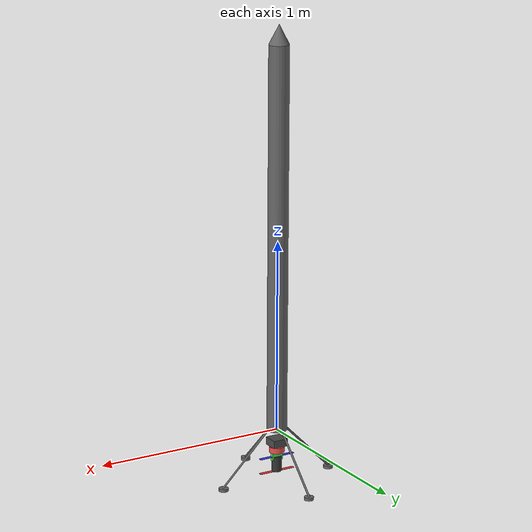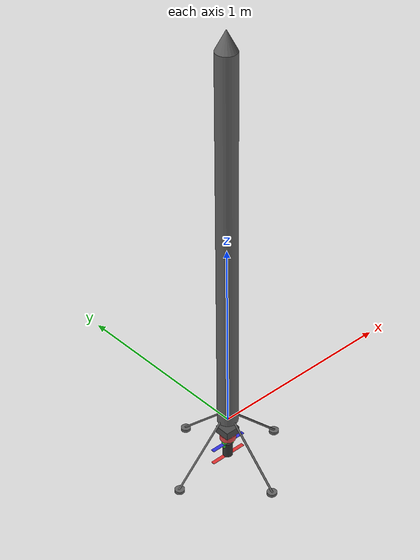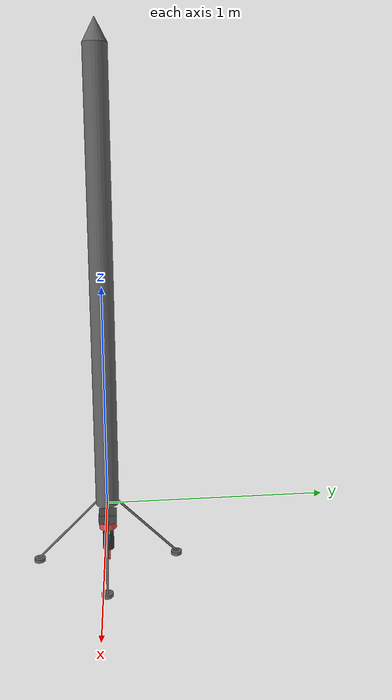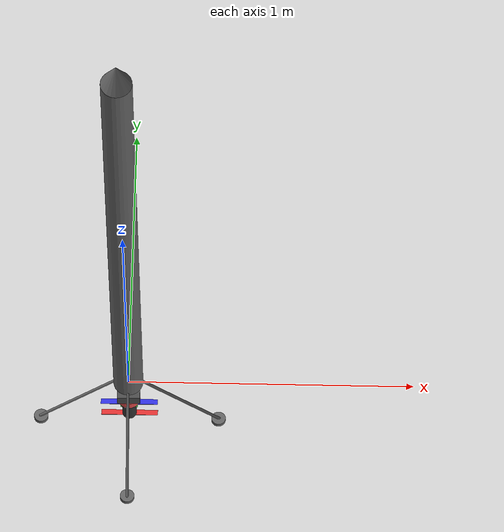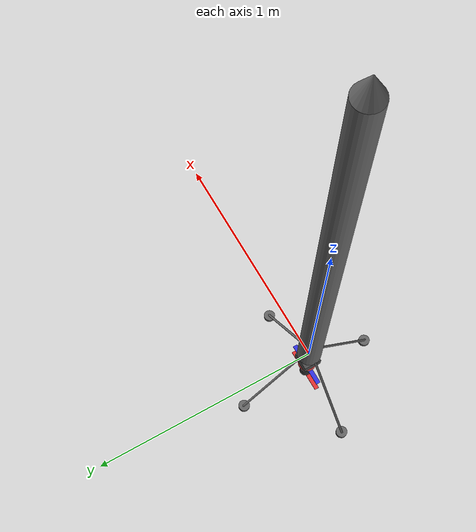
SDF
<?xml version="1.0"?>
<sdf version="1.9">
  <model name="TVC">

    <link name="base_link">
      <pose>0 0 1.0 0 0 0</pose>
      <inertial>
        <mass>0.51</mass>
        <pose>0 0 0 0 0 0</pose>
        <inertia>
          <ixx>0.042</ixx>
          <iyy>0.042</iyy>
          <izz>0.0001</izz>
          <ixy>0</ixy>
          <ixz>0</ixz>
          <iyz>0</iyz>
        </inertia>
      </inertial>

      <visual name="body_visual">
        <geometry>
          <cylinder>
            <radius>0.052</radius>
            <length>2.0</length>
          </cylinder>
        </geometry>
        <material>
          <ambient>0.2 0.2 0.2 1</ambient>
          <diffuse>0.4 0.4 0.4 1</diffuse>
          <specular>0.1 0.1 0.1 1</specular>
        </material>
      </visual>

      <collision name="body_collision">
        <geometry>
          <cylinder>
            <radius>0.052</radius>
            <length>1.0</length>
          </cylinder>
        </geometry>
      </collision>

      <sensor name="imu_sensor" type="imu">
        <always_on>1</always_on>
        <update_rate>250</update_rate>
        <pose>0 0 0.1 0 0 -1.5708</pose>
        <visualize>1</visualize>
        <imu>
          <angular_velocity>
            <x>
              <noise type="gaussian">
                <mean>0</mean>
                <stddev>0.0001</stddev>
                <dynamic_bias_stddev>1e-05</dynamic_bias_stddev>
                <dynamic_bias_correlation_time>1000</dynamic_bias_correlation_time>
              </noise>
            </x>
            <y>
              <noise type="gaussian">
                <mean>0</mean>
                <stddev>0.0001</stddev>
                <dynamic_bias_stddev>1e-05</dynamic_bias_stddev>
                <dynamic_bias_correlation_time>1000</dynamic_bias_correlation_time>
              </noise>
            </y>
            <z>
              <noise type="gaussian">
                <mean>0</mean>
                <stddev>0.00001</stddev>
                <dynamic_bias_stddev>1e-05</dynamic_bias_stddev>
                <dynamic_bias_correlation_time>1000</dynamic_bias_correlation_time>
              </noise>
            </z>
          </angular_velocity>
          <linear_acceleration>
            <x>
              <noise type="gaussian">
                <mean>0</mean>
                <stddev>0.001</stddev>
                <dynamic_bias_stddev>0.001</dynamic_bias_stddev>
                <dynamic_bias_correlation_time>300</dynamic_bias_correlation_time>
              </noise>
            </x>
            <y>
              <noise type="gaussian">
                <mean>0</mean>
                <stddev>0.001</stddev>
                <dynamic_bias_stddev>0.001</dynamic_bias_stddev>
                <dynamic_bias_correlation_time>300</dynamic_bias_correlation_time>
              </noise>
            </y>
            <z>
              <noise type="gaussian">
                <mean>0</mean>
                <stddev>0.0001</stddev>
                <dynamic_bias_stddev>0.0001</dynamic_bias_stddev>
                <dynamic_bias_correlation_time>300</dynamic_bias_correlation_time>
              </noise>
            </z>
          </linear_acceleration>
        </imu>
      </sensor>

      <sensor name="air_pressure_sensor" type="air_pressure">
        <always_on>1</always_on>
        <update_rate>50</update_rate>
        <air_pressure>
          <pressure>
            <noise type="gaussian">
              <mean>0</mean>
              <stddev>0.01</stddev>
            </noise>
          </pressure>
        </air_pressure>
      </sensor>

      <sensor name="navsat_sensor" type="navsat">
        <always_on>1</always_on>
        <update_rate>30</update_rate>
      </sensor>

    </link>

    <link name="top_cone">
      <pose>0 0 2.05 0 0 0</pose>
      <inertial>
        <mass>0.01</mass>
        <inertia>
          <ixx>1e-5</ixx>
          <iyy>1e-5</iyy>
          <izz>1e-5</izz>
          <ixy>0</ixy>
          <ixz>0</ixz>
          <iyz>0</iyz>
        </inertia>
      </inertial>

      <visual name="top_cone_visual">
        <geometry>
          <cone>
            <radius>0.052</radius>
            <length>0.1</length>
          </cone>
        </geometry>
        <material>
          <ambient>0.2 0.2 0.2 1</ambient>
          <diffuse>0.4 0.4 0.4 1</diffuse>
        </material>
      </visual>

      <collision name="top_cone_collision">
        <geometry>
          <cone>
            <radius>0.052</radius>
            <length>0.1</length>
          </cone>
        </geometry>
      </collision>
    </link>

    <link name="gimbal_mount">
      <pose>0 0 -0.065 0 0 0</pose>
      <inertial>
        <mass>0.005</mass>
        <inertia>
          <ixx>1e-5</ixx>
          <iyy>1e-5</iyy>
          <izz>1e-5</izz>
          <ixy>0</ixy>
          <ixz>0</ixz>
          <iyz>0</iyz>
        </inertia>
      </inertial>

      <visual name="gimbal_mount_visual">
        <geometry>
          <box>
            <size>0.08 0.08 0.04</size>
          </box>
        </geometry>
        <material>
          <ambient>0.1 0.1 0.1 1</ambient>
          <diffuse>0.3 0.3 0.3 1</diffuse>
        </material>
      </visual>

      <collision name="gimbal_mount_collision">
        <geometry>
          <box>
            <size>0.08 0.08 0.04</size>
          </box>
        </geometry>
      </collision>
    </link>

    <link name="servo2_yaw">
      <pose>0 0 -0.105 0 0 0</pose>
      <inertial>
        <mass>0.003</mass>
        <inertia>
          <ixx>1e-5</ixx>
          <iyy>1e-5</iyy>
          <izz>1e-5</izz>
          <ixy>0</ixy>
          <ixz>0</ixz>
          <iyz>0</iyz>
        </inertia>
      </inertial>

      <visual name="servo2_yaw_visual">
        <geometry>
          <cylinder>
            <radius>0.04</radius>
            <length>0.03</length>
          </cylinder>
        </geometry>
        <material>
          <ambient>0.8 0.2 0.2 1</ambient>
          <diffuse>0.9 0.3 0.3 1</diffuse>
        </material>
      </visual>

      <collision name="servo2_yaw_collision">
        <geometry>
          <cylinder>
            <radius>0.04</radius>
            <length>0.03</length>
          </cylinder>
        </geometry>
      </collision>
    </link>

    <link name="servo1_pitch">
      <pose>0 0 -0.135 0 0 0</pose>
      <inertial>
        <mass>0.003</mass>
        <inertia>
          <ixx>1e-5</ixx>
          <iyy>1e-5</iyy>
          <izz>1e-5</izz>
          <ixy>0</ixy>
          <ixz>0</ixz>
          <iyz>0</iyz>
        </inertia>
      </inertial>

      <visual name="servo1_pitch_visual">
        <geometry>
          <box>
            <size>0.06 0.02 0.06</size>
          </box>
        </geometry>
        <material>
          <ambient>0.2 0.8 0.2 1</ambient>
          <diffuse>0.3 0.9 0.3 1</diffuse>
        </material>
      </visual>

      <collision name="servo1_pitch_collision">
        <geometry>
          <box>
            <size>0.06 0.02 0.06</size>
          </box>
        </geometry>
      </collision>
    </link>

    <link name="motor_housing">
      <pose>0 0 -0.185 0 0 0</pose>
      <inertial>
        <mass>0.01</mass>
        <inertia>
          <ixx>1e-5</ixx>
          <iyy>1e-5</iyy>
          <izz>1e-5</izz>
          <ixy>0</ixy>
          <ixz>0</ixz>
          <iyz>0</iyz>
        </inertia>
      </inertial>

      <visual name="motor_housing_visual">
        <geometry>
          <cylinder>
            <radius>0.025</radius>
            <length>0.08</length>
          </cylinder>
        </geometry>
        <material>
          <ambient>0.1 0.1 0.1 1</ambient>
          <diffuse>0.2 0.2 0.2 1</diffuse>
        </material>
      </visual>

      <collision name="motor_housing_collision">
        <geometry>
          <cylinder>
            <radius>0.025</radius>
            <length>0.08</length>
          </cylinder>
        </geometry>
      </collision>
    </link>

    <link name="prop_upper">
      <pose>0 0 -0.145 0 0 0</pose>
      <inertial>
        <mass>0.001</mass>
        <inertia>
          <ixx>1e-5</ixx>
          <iyy>1e-4</iyy>
          <izz>1e-4</izz>
          <ixy>0</ixy>
          <ixz>0</ixz>
          <iyz>0</iyz>
        </inertia>
      </inertial>

      <visual name="prop_upper_visual">
        <geometry>
          <box>
            <size>0.2 0.02 0.002</size>
          </box>
        </geometry>
        <material>
          <ambient>0.1 0.1 0.8 1</ambient>
          <diffuse>0.2 0.2 0.9 1</diffuse>
        </material>
      </visual>

      <collision name="prop_upper_collision">
        <geometry>
          <box>
            <size>0.2 0.02 0.002</size>
          </box>
        </geometry>
      </collision>
    </link>

    <link name="prop_lower">
      <pose>0 0 -0.225 0 0 0</pose>
      <inertial>
        <mass>0.001</mass>
        <inertia>
          <ixx>1e-5</ixx>
          <iyy>1e-4</iyy>
          <izz>1e-4</izz>
          <ixy>0</ixy>
          <ixz>0</ixz>
          <iyz>0</iyz>
        </inertia>
      </inertial>

      <visual name="prop_lower_visual">
        <geometry>
          <box>
            <size>0.2 0.02 0.002</size>
          </box>
        </geometry>
        <material>
          <ambient>0.8 0.1 0.1 1</ambient>
          <diffuse>0.9 0.2 0.2 1</diffuse>
        </material>
      </visual>

      <collision name="prop_lower_collision">
        <geometry>
          <box>
            <size>0.2 0.02 0.002</size>
          </box>
        </geometry>
      </collision>
    </link>

    <link name="landing_leg_1">
      <pose>0.18 0 -0.1216 0 -0.78539816339 0</pose>
      <inertial>
        <mass>0.005</mass>
        <inertia>
          <ixx>1e-6</ixx>
          <iyy>1e-6</iyy>
          <izz>1e-6</izz>
        </inertia>
      </inertial>
      <visual name="leg_1_visual">
        <geometry>
          <cylinder>
            <radius>0.005</radius>
            <length>0.4</length>
          </cylinder>
        </geometry>
        <material>
          <ambient>0.2 0.2 0.2 1</ambient>
          <diffuse>0.4 0.4 0.4 1</diffuse>
        </material>
      </visual>
      <collision name="leg_1_collision">
        <geometry>
          <cylinder>
            <radius>0.005</radius>
            <length>0.4</length>
          </cylinder>
        </geometry>
      </collision>
    </link>

    <link name="landing_leg_2">
      <pose>0 0.18 -0.1216 0.78539816339 0 0</pose>
      <inertial>
        <mass>0.005</mass>
        <inertia>
          <ixx>1e-6</ixx>
          <iyy>1e-6</iyy>
          <izz>1e-6</izz>
        </inertia>
      </inertial>
      <visual name="leg_2_visual">
        <geometry>
          <cylinder>
            <radius>0.005</radius>
            <length>0.4</length>
          </cylinder>
        </geometry>
        <material>
          <ambient>0.2 0.2 0.2 1</ambient>
          <diffuse>0.4 0.4 0.4 1</diffuse>
        </material>
      </visual>
      <collision name="leg_2_collision">
        <geometry>
          <cylinder>
            <radius>0.005</radius>
            <length>0.4</length>
          </cylinder>
        </geometry>
      </collision>
    </link>

    <link name="landing_leg_3">
      <pose>-0.18 0 -0.1216 0 0.78539816339 0</pose>
      <inertial>
        <mass>0.005</mass>
        <inertia>
          <ixx>1e-6</ixx>
          <iyy>1e-6</iyy>
          <izz>1e-6</izz>
        </inertia>
      </inertial>
      <visual name="leg_3_visual">
        <geometry>
          <cylinder>
            <radius>0.005</radius>
            <length>0.4</length>
          </cylinder>
        </geometry>
        <material>
          <ambient>0.2 0.2 0.2 1</ambient>
          <diffuse>0.4 0.4 0.4 1</diffuse>
        </material>
      </visual>
      <collision name="leg_3_collision">
        <geometry>
          <cylinder>
            <radius>0.005</radius>
            <length>0.4</length>
          </cylinder>
        </geometry>
      </collision>
    </link>

    <link name="landing_leg_4">
      <pose>0 -0.18 -0.1216 -0.78539816339 0 0</pose>
      <inertial>
        <mass>0.005</mass>
        <inertia>
          <ixx>1e-6</ixx>
          <iyy>1e-6</iyy>
          <izz>1e-6</izz>
        </inertia>
      </inertial>
      <visual name="leg_4_visual">
        <geometry>
          <cylinder>
            <radius>0.005</radius>
            <length>0.4</length>
          </cylinder>
        </geometry>
        <material>
          <ambient>0.2 0.2 0.2 1</ambient>
          <diffuse>0.4 0.4 0.4 1</diffuse>
        </material>
      </visual>
      <collision name="leg_4_collision">
        <geometry>
          <cylinder>
            <radius>0.005</radius>
            <length>0.4</length>
          </cylinder>
        </geometry>
      </collision>
    </link>

    <!-- Landing leg bases -->
    <link name="landing_base_1">
      <pose>0.315 0 -0.265 0 0 0</pose>
      <inertial>
        <mass>0.001</mass>
        <inertia>
          <ixx>1e-6</ixx>
          <iyy>1e-6</iyy>
          <izz>1e-6</izz>
        </inertia>
      </inertial>
      <visual name="base_1_visual">
        <geometry>
          <cylinder>
            <radius>0.025</radius>
            <length>0.015</length>
          </cylinder>
        </geometry>
        <material>
          <ambient>0.2 0.2 0.2 1</ambient>
          <diffuse>0.4 0.4 0.4 1</diffuse>
        </material>
      </visual>
      <collision name="base_1_collision">
        <geometry>
          <cylinder>
            <radius>0.025</radius>
            <length>0.015</length>
          </cylinder>
        </geometry>
      </collision>
    </link>

    <link name="landing_base_2">
      <pose>0 0.315 -0.265 0 0 0</pose>
      <inertial>
        <mass>0.001</mass>
        <inertia>
          <ixx>1e-6</ixx>
          <iyy>1e-6</iyy>
          <izz>1e-6</izz>
        </inertia>
      </inertial>
      <visual name="base_2_visual">
        <geometry>
          <cylinder>
            <radius>0.025</radius>
            <length>0.015</length>
          </cylinder>
        </geometry>
        <material>
          <ambient>0.2 0.2 0.2 1</ambient>
          <diffuse>0.4 0.4 0.4 1</diffuse>
        </material>
      </visual>
      <collision name="base_2_collision">
        <geometry>
          <cylinder>
            <radius>0.025</radius>
            <length>0.015</length>
          </cylinder>
        </geometry>
      </collision>
    </link>

    <link name="landing_base_3">
      <pose>-0.315 0 -0.265 0 0 0</pose>
      <inertial>
        <mass>0.001</mass>
        <inertia>
          <ixx>1e-6</ixx>
          <iyy>1e-6</iyy>
          <izz>1e-6</izz>
        </inertia>
      </inertial>
      <visual name="base_3_visual">
        <geometry>
          <cylinder>
            <radius>0.025</radius>
            <length>0.015</length>
          </cylinder>
        </geometry>
        <material>
          <ambient>0.2 0.2 0.2 1</ambient>
          <diffuse>0.4 0.4 0.4 1</diffuse>
        </material>
      </visual>
      <collision name="base_3_collision">
        <geometry>
          <cylinder>
            <radius>0.025</radius>
            <length>0.015</length>
          </cylinder>
        </geometry>
      </collision>
    </link>

    <link name="landing_base_4">
      <pose>0 -0.315 -0.265 0 0 0</pose>
      <inertial>
        <mass>0.001</mass>
        <inertia>
          <ixx>1e-6</ixx>
          <iyy>1e-6</iyy>
          <izz>1e-6</izz>
        </inertia>
      </inertial>
      <visual name="base_4_visual">
        <geometry>
          <cylinder>
            <radius>0.025</radius>
            <length>0.015</length>
          </cylinder>
        </geometry>
        <material>
          <ambient>0.2 0.2 0.2 1</ambient>
          <diffuse>0.4 0.4 0.4 1</diffuse>
        </material>
      </visual>
      <collision name="base_4_collision">
        <geometry>
          <cylinder>
            <radius>0.025</radius>
            <length>0.015</length>
          </cylinder>
        </geometry>
      </collision>
    </link>

    <joint name="base_to_gimbal_mount" type="fixed">
      <parent>base_link</parent>
      <child>gimbal_mount</child>
    </joint>

    <joint name="top_cone_to_base" type="fixed">
      <parent>base_link</parent>
      <child>top_cone</child>
    </joint>

    <joint name="leg_1_joint" type="fixed">
      <parent>base_link</parent>
      <child>landing_leg_1</child>
    </joint>
    <joint name="leg_2_joint" type="fixed">
      <parent>base_link</parent>
      <child>landing_leg_2</child>
    </joint>
    <joint name="leg_3_joint" type="fixed">
      <parent>base_link</parent>
      <child>landing_leg_3</child>
    </joint>
    <joint name="leg_4_joint" type="fixed">
      <parent>base_link</parent>
      <child>landing_leg_4</child>
    </joint>

    <!-- Joints connecting legs to their bases -->
    <joint name="leg_1_to_base_1" type="fixed">
      <parent>landing_leg_1</parent>
      <child>landing_base_1</child>
    </joint>
    <joint name="leg_2_to_base_2" type="fixed">
      <parent>landing_leg_2</parent>
      <child>landing_base_2</child>
    </joint>
    <joint name="leg_3_to_base_3" type="fixed">
      <parent>landing_leg_3</parent>
      <child>landing_base_3</child>
    </joint>
    <joint name="leg_4_to_base_4" type="fixed">
      <parent>landing_leg_4</parent>
      <child>landing_base_4</child>
    </joint>

    <joint name="servo2_yaw_joint" type="revolute">
      <parent>gimbal_mount</parent>
      <child>servo2_yaw</child>
      <axis>
        <xyz>0 1 0</xyz>
        <limit>
          <lower>-0.5</lower>
          <upper>0.5</upper>
          <effort>1.0</effort>
          <velocity>10.0</velocity>
        </limit>
        <dynamics>
          <damping>0.01</damping>
          <friction>0.001</friction>
        </dynamics>
      </axis>
    </joint>

    <joint name="servo1_pitch_joint" type="revolute">
      <parent>servo2_yaw</parent>
      <child>servo1_pitch</child>
      <axis>
        <xyz>1 0 0</xyz>
        <limit>
          <lower>-0.5</lower>
          <upper>0.5</upper>
          <effort>1.0</effort>
          <velocity>10.0</velocity>
        </limit>
        <dynamics>
          <damping>0.01</damping>
          <friction>0.001</friction>
        </dynamics>
      </axis>
    </joint>

    <joint name="pitch_to_motor" type="fixed">
      <parent>servo1_pitch</parent>
      <child>motor_housing</child>
    </joint>

    <joint name="motor1_joint" type="revolute">
      <parent>motor_housing</parent>
      <child>prop_upper</child>
      <axis>
        <xyz>0 0 1</xyz>
        <limit>
          <lower>-1e16</lower>
          <upper>1e16</upper>
          <effort>1.0</effort>
          <velocity>4000.0</velocity>
        </limit>
        <dynamics>
          <damping>0.001</damping>
          <friction>0.0001</friction>
        </dynamics>
      </axis>
    </joint>

    <joint name="motor2_joint" type="revolute">
      <parent>motor_housing</parent>
      <child>prop_lower</child>
      <axis>
        <xyz>0 0 1</xyz>
        <limit>
          <lower>-1e16</lower>
          <upper>1e16</upper>
          <effort>1.0</effort>
          <velocity>4000.0</velocity>
        </limit>
        <dynamics>
          <damping>0.001</damping>
          <friction>0.0001</friction>
        </dynamics>
      </axis>
    </joint>

    <plugin filename="gz-sim-multicopter-motor-model-system"
            name="gz::sim::systems::MulticopterMotorModel">
      <jointName>motor1_joint</jointName>
      <linkName>prop_upper</linkName>
      <turningDirection>ccw</turningDirection>
      <timeConstantUp>0.0125</timeConstantUp>
      <timeConstantDown>0.025</timeConstantDown>
      <maxRotVelocity>1400</maxRotVelocity>
      <motorConstant>0.0000048449</motorConstant>
      <momentConstant>0.001</momentConstant>
      <commandSubTopic>command/motor_speed</commandSubTopic>
      <motorNumber>0</motorNumber>
      <rotorDragCoefficient>0.000806428</rotorDragCoefficient>
      <rollingMomentCoefficient>1e-06</rollingMomentCoefficient>
      <rotorVelocitySlowdownSim>10</rotorVelocitySlowdownSim>
      <motorType>velocity</motorType>
    </plugin>

    <plugin filename="gz-sim-multicopter-motor-model-system"
            name="gz::sim::systems::MulticopterMotorModel">
      <jointName>motor2_joint</jointName>
      <linkName>prop_lower</linkName>
      <turningDirection>cw</turningDirection>
      <timeConstantUp>0.0125</timeConstantUp>
      <timeConstantDown>0.025</timeConstantDown>
      <maxRotVelocity>1400</maxRotVelocity>
      <motorConstant>0.0000048449</motorConstant>
      <momentConstant>0.001</momentConstant>
      <commandSubTopic>command/motor_speed</commandSubTopic>
      <motorNumber>1</motorNumber>
      <rotorDragCoefficient>0.000806428</rotorDragCoefficient>
      <rollingMomentCoefficient>1e-06</rollingMomentCoefficient>
      <rotorVelocitySlowdownSim>10</rotorVelocitySlowdownSim>
      <motorType>velocity</motorType>
    </plugin>

    <plugin filename="gz-sim-joint-position-controller-system"
            name="gz::sim::systems::JointPositionController">
      <joint_name>servo1_pitch_joint</joint_name>
      <sub_topic>servo_0</sub_topic>
      <p_gain>1</p_gain>
      </plugin>

    <plugin filename="gz-sim-joint-position-controller-system"
            name="gz::sim::systems::JointPositionController">
      <joint_name>servo2_yaw_joint</joint_name>
      <sub_topic>servo_1</sub_topic>
      <p_gain>1</p_gain>
      </plugin>

    <plugin filename="libgz-sim-pose-publisher-system.so"
            name="gz::sim::systems::PosePublisher">
      <publish_link_pose>true</publish_link_pose>
      <publish_collision_pose>false</publish_collision_pose>
      <publish_visual_pose>false</publish_visual_pose>
      <use_pose_vector_msg>true</use_pose_vector_msg>
      <static_publisher>true</static_publisher>
      <static_update_frequency>10</static_update_frequency>
    </plugin>

  </model>
</sdf>
